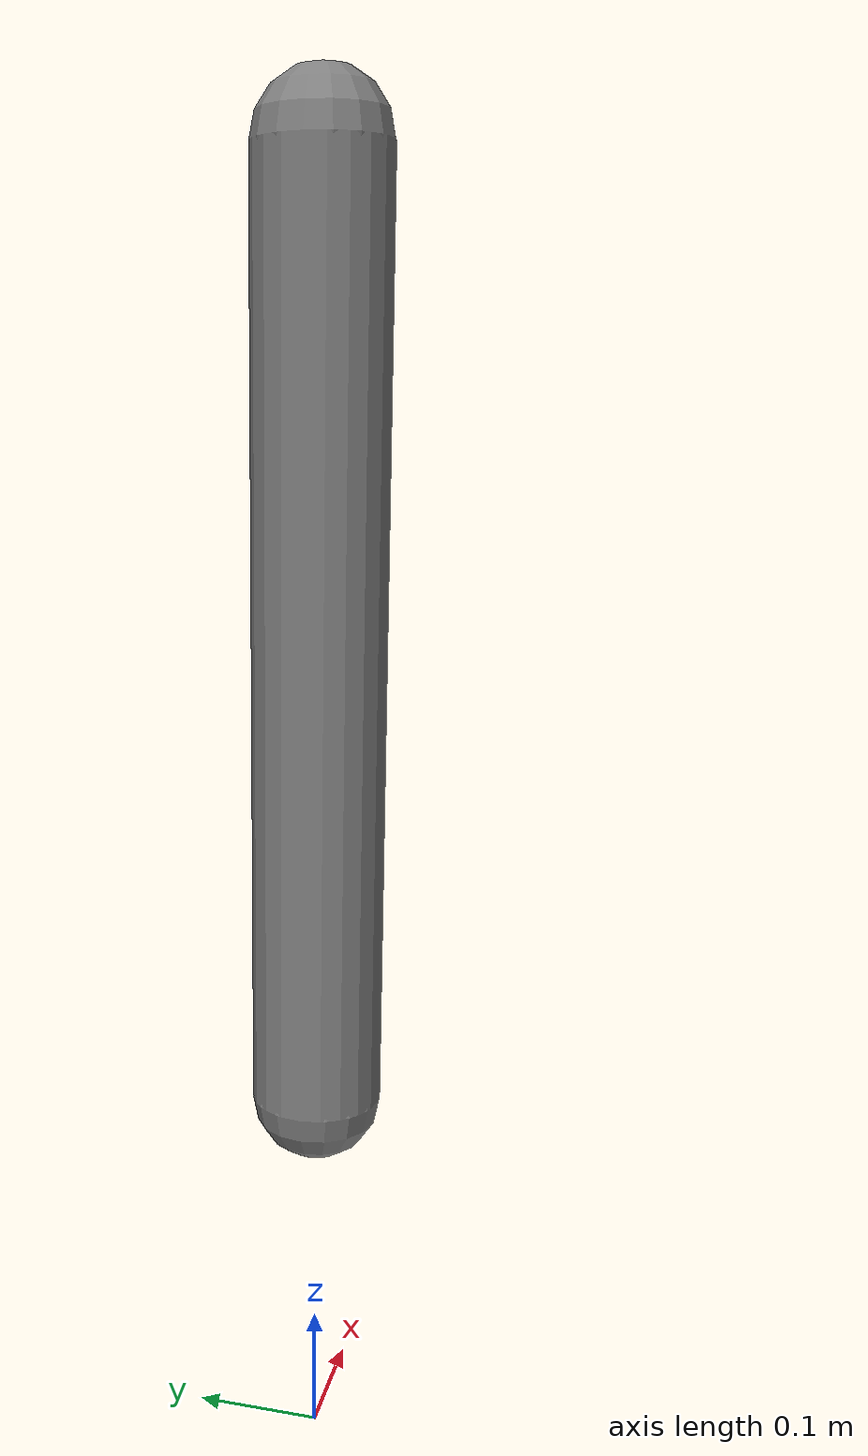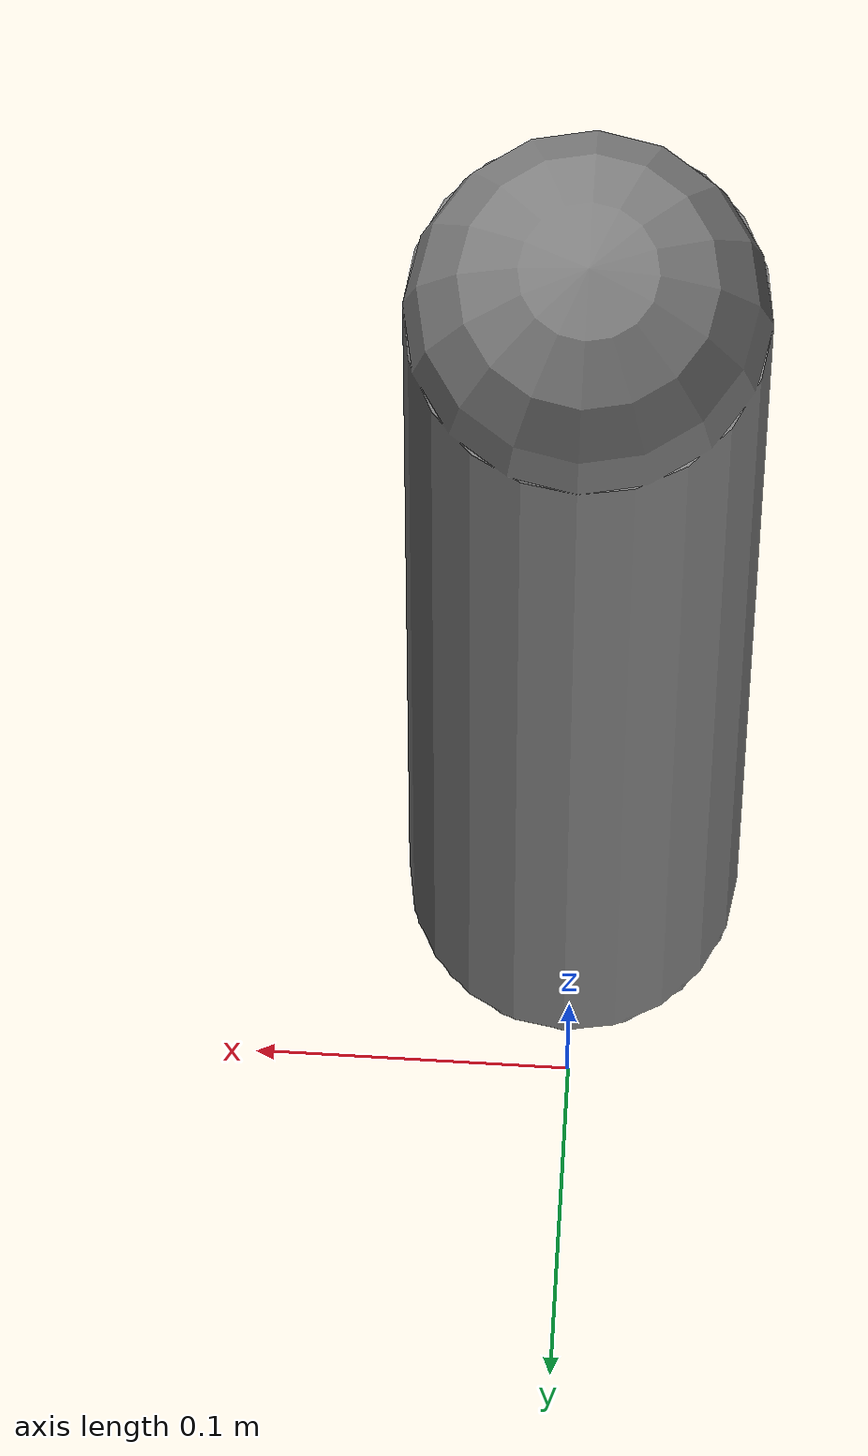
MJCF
<mujoco model="pendulum_creature">
  <option timestep="0.005" gravity="0 0 -9.81"/>
  <worldbody>
    <body name="creature_root" pos="0 0 1">
      <joint name="hip" type="hinge" axis="0 1 0"/>
      <geom type="capsule" fromto="0 0 0 0 0 -0.7" size="0.05" density="500"/>
    </body>
  </worldbody>
  <actuator>
    <motor name="hip_motor" joint="hip" gear="60"/>
  </actuator>
</mujoco>
